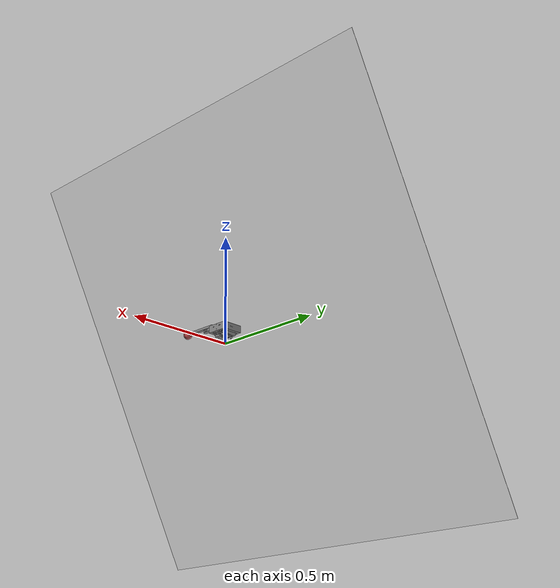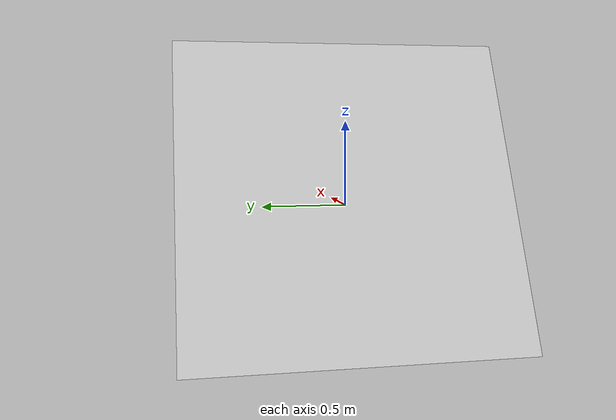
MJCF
<mujoco model="one_leg">
  <compiler angle="radian" meshdir="../meshes/"/>

  <asset>
    <mesh name="rectangle" content_type="model/stl" file="../meshes/rectangle.stl" scale="0.001 0.001 0.001"/>
    <mesh name="link1" content_type="model/stl" file="../meshes/link1.STL" scale="0.001 0.001 0.001"/>
    <mesh name="link2" content_type="model/stl" file="../meshes/link2.STL" scale="0.001 0.001 0.001"/>
  </asset>

  <worldbody>
    <geom name="floor" type="plane" size="1 1 0.1" pos="-0.1709 0 0.08662" euler="0 90 0" rgba="0.8 0.8 0.8 1"/>
    <geom type="mesh" contype="0" conaffinity="0" group="1" density="0" mesh="rectangle"/>
    <geom type="mesh" mesh="rectangle"/>
    <body name="link1" pos="0.03 0.03 0.08">
      <joint name="rectangle_to_link1" range="-1.57 1.57" actuatorfrcrange="-100 100"/>
      <geom pos="-0.00968398 -0.131466 -0.014" quat="1 0 0 0" type="mesh" contype="0" conaffinity="0" group="1" density="0" mesh="link1"/>
      <geom pos="-0.00968398 -0.131466 -0.014" quat="1 0 0 0" type="mesh" mesh="link1"/>
      <body name="link2" pos="0.00041797 -0.12084 0.00162">
        <site name="foot_site" type="sphere" size="0.02" pos="0 -0.12 0.005" rgba="1 0 0 0.4"/>
        <joint name="link1_to_link2" range="-1.57 1.57" actuatorfrcrange="-100 100"/>
        <geom pos="-0.016 -0.136 -0.011" quat="1 0 0 0" type="mesh" contype="0" conaffinity="0" group="1" density="0" mesh="link2"/>
        <geom pos="-0.016 -0.136 -0.011" quat="1 0 0 0" type="mesh" mesh="link2"/>
      </body>
    </body>
  </worldbody>
  <sensor>
    <touch name="foot_force" site="foot_site"/>
  </sensor>
</mujoco>
